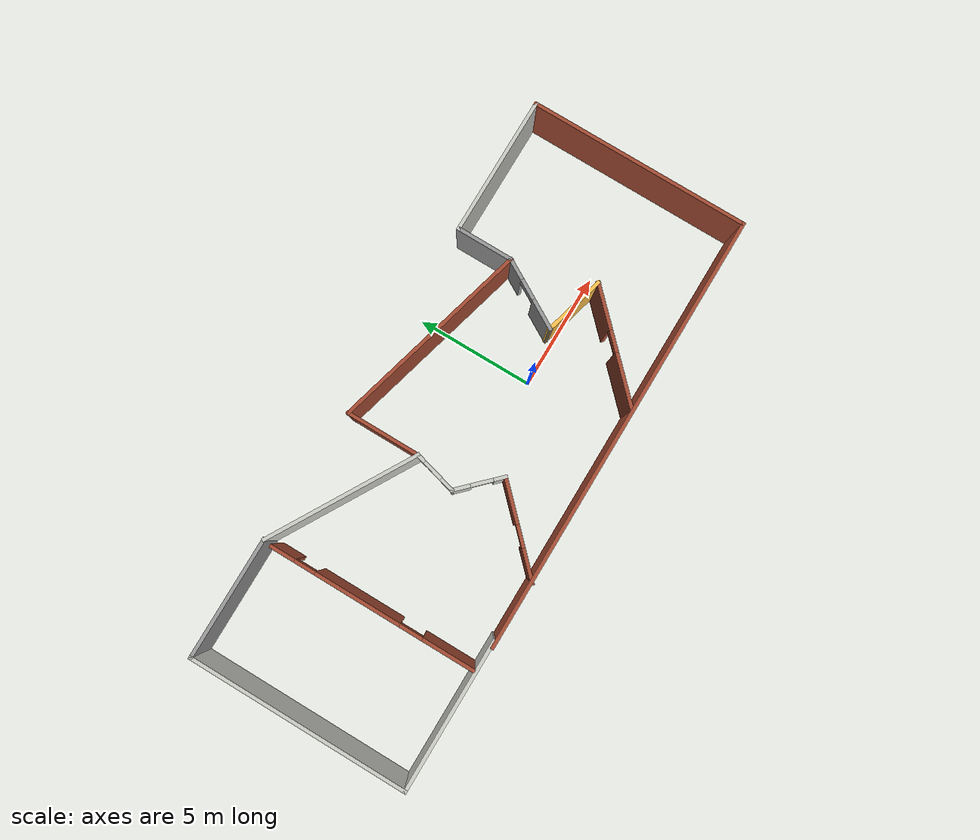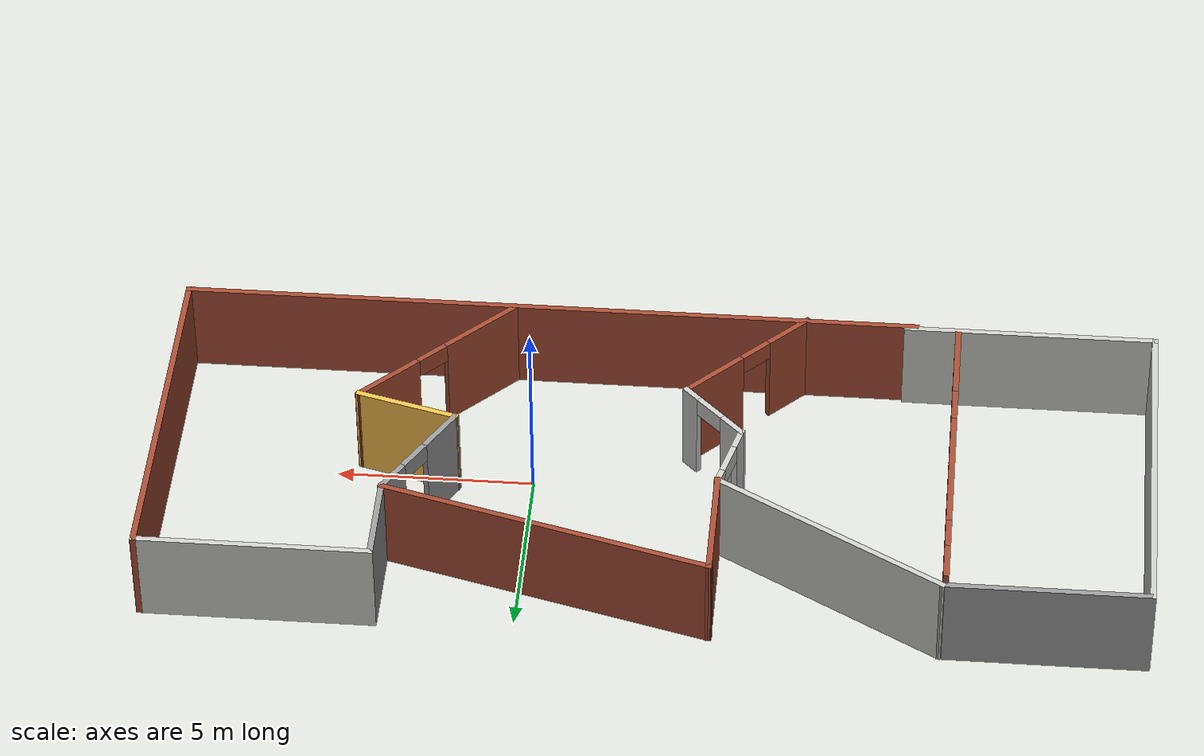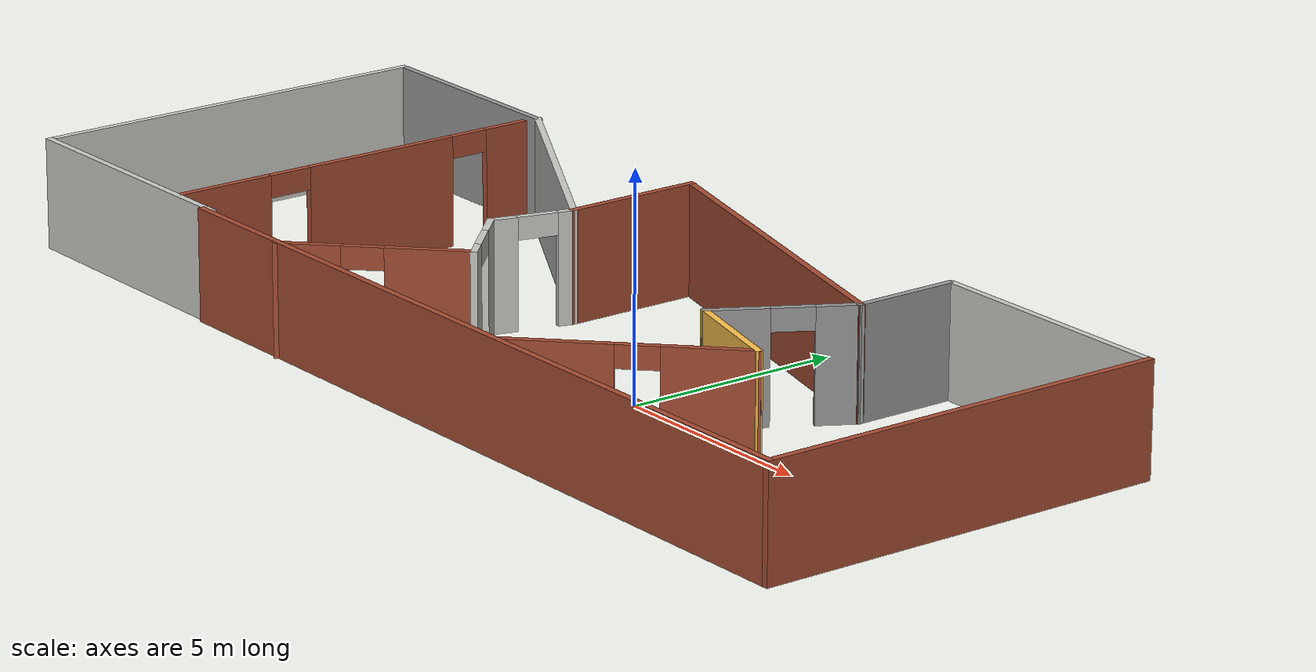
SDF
<?xml version='1.0'?>
<sdf version='1.6'>
  <model name='model'>
    <pose frame=''>-3.17932 0.659282 0 0 -0 0</pose>
    <link name='Wall_1'>
      <collision name='Wall_1_Collision'>
        <geometry>
          <box>
            <size>19 0.15 2.5</size>
          </box>
        </geometry>
        <pose frame=''>0 0 1.25 0 -0 0</pose>
      </collision>
      <visual name='Wall_1_Visual'>
        <pose frame=''>0 0 1.25 0 -0 0</pose>
        <geometry>
          <box>
            <size>19 0.15 2.5</size>
          </box>
        </geometry>
        <material>
          <script>
            <uri>file://media/materials/scripts/gazebo.material</uri>
            <name>Gazebo/Bricks</name>
          </script>
          <ambient>1 1 1 1</ambient>
        </material>
        <meta>
          <layer>0</layer>
        </meta>
      </visual>
      <pose frame=''>3.06136 -4.68852 0 0 -0 0</pose>
    </link>
    <link name='Wall_10'>
      <collision name='Wall_10_Collision'>
        <geometry>
          <box>
            <size>6.5 0.15 2.5</size>
          </box>
        </geometry>
        <pose frame=''>0 0 1.25 0 -0 0</pose>
      </collision>
      <visual name='Wall_10_Visual'>
        <pose frame=''>0 0 1.25 0 -0 0</pose>
        <geometry>
          <box>
            <size>6.5 0.15 2.5</size>
          </box>
        </geometry>
        <material>
          <script>
            <uri>file://media/materials/scripts/gazebo.material</uri>
            <name>Gazebo/CeilingTiled</name>
          </script>
          <ambient>0.996078 0.47451 0.0196078 1</ambient>
        </material>
        <meta>
          <layer>0</layer>
        </meta>
      </visual>
      <pose frame=''>-9.31137 -4.61268 0 0 -0 0</pose>
    </link>
    <link name='Wall_12'>
      <pose frame=''>-7.45424 -0.069457 0 0 0 -1.5708</pose>
      <visual name='Wall_12_Visual_0'>
        <pose frame=''>-3.956 0 1.25 0 -0 0</pose>
        <geometry>
          <box>
            <size>1.08801 0.15 2.5</size>
          </box>
        </geometry>
        <material>
          <script>
            <uri>file://media/materials/scripts/gazebo.material</uri>
            <name>Gazebo/Bricks</name>
          </script>
          <ambient>1 1 1 1</ambient>
        </material>
        <meta>
          <layer>0</layer>
        </meta>
      </visual>
      <collision name='Wall_12_Collision_0'>
        <geometry>
          <box>
            <size>1.08801 0.15 2.5</size>
          </box>
        </geometry>
        <pose frame=''>-3.956 0 1.25 0 -0 0</pose>
      </collision>
      <visual name='Wall_12_Visual_1'>
        <pose frame=''>-0.646172 0 1.25 0 -0 0</pose>
        <geometry>
          <box>
            <size>3.73163 0.15 2.5</size>
          </box>
        </geometry>
        <material>
          <script>
            <uri>file://media/materials/scripts/gazebo.material</uri>
            <name>Gazebo/Bricks</name>
          </script>
          <ambient>1 1 1 1</ambient>
        </material>
        <meta>
          <layer>0</layer>
        </meta>
      </visual>
      <collision name='Wall_12_Collision_1'>
        <geometry>
          <box>
            <size>3.73163 0.15 2.5</size>
          </box>
        </geometry>
        <pose frame=''>-0.646172 0 1.25 0 -0 0</pose>
      </collision>
      <visual name='Wall_12_Visual_2'>
        <pose frame=''>3.35982 0 1.25 0 -0 0</pose>
        <geometry>
          <box>
            <size>2.28035 0.15 2.5</size>
          </box>
        </geometry>
        <material>
          <script>
            <uri>file://media/materials/scripts/gazebo.material</uri>
            <name>Gazebo/Bricks</name>
          </script>
          <ambient>1 1 1 1</ambient>
        </material>
        <meta>
          <layer>0</layer>
        </meta>
      </visual>
      <collision name='Wall_12_Collision_2'>
        <geometry>
          <box>
            <size>2.28035 0.15 2.5</size>
          </box>
        </geometry>
        <pose frame=''>3.35982 0 1.25 0 -0 0</pose>
      </collision>
      <visual name='Wall_12_Visual_3'>
        <pose frame=''>-2.96199 0 2.25 0 -0 0</pose>
        <geometry>
          <box>
            <size>0.9 0.15 0.5</size>
          </box>
        </geometry>
        <material>
          <script>
            <uri>file://media/materials/scripts/gazebo.material</uri>
            <name>Gazebo/Bricks</name>
          </script>
          <ambient>1 1 1 1</ambient>
        </material>
        <meta>
          <layer>0</layer>
        </meta>
      </visual>
      <collision name='Wall_12_Collision_3'>
        <geometry>
          <box>
            <size>0.9 0.15 0.5</size>
          </box>
        </geometry>
        <pose frame=''>-2.96199 0 2.25 0 -0 0</pose>
      </collision>
      <visual name='Wall_12_Visual_4'>
        <pose frame=''>1.71965 0 2.25 0 -0 0</pose>
        <geometry>
          <box>
            <size>1 0.15 0.5</size>
          </box>
        </geometry>
        <material>
          <script>
            <uri>file://media/materials/scripts/gazebo.material</uri>
            <name>Gazebo/Bricks</name>
          </script>
          <ambient>1 1 1 1</ambient>
        </material>
        <meta>
          <layer>0</layer>
        </meta>
      </visual>
      <collision name='Wall_12_Collision_4'>
        <geometry>
          <box>
            <size>1 0.15 0.5</size>
          </box>
        </geometry>
        <pose frame=''>1.71965 0 2.25 0 -0 0</pose>
      </collision>
    </link>
    <link name='Wall_14'>
      <pose frame=''>-1.91 0.543838 0 0 0 -1.8326</pose>
      <visual name='Wall_14_Visual_0'>
        <pose frame=''>-0.778717 0 1.25 0 -0 0</pose>
        <geometry>
          <box>
            <size>0.442566 0.15 2.5</size>
          </box>
        </geometry>
        <material>
          <script>
            <uri>file://media/materials/scripts/gazebo.material</uri>
            <name>Gazebo/CeilingTiled</name>
          </script>
          <ambient>1 0.764706 0.305882 1</ambient>
        </material>
        <meta>
          <layer>0</layer>
        </meta>
      </visual>
      <collision name='Wall_14_Collision_0'>
        <geometry>
          <box>
            <size>0.442566 0.15 2.5</size>
          </box>
        </geometry>
        <pose frame=''>-0.778717 0 1.25 0 -0 0</pose>
      </collision>
      <visual name='Wall_14_Visual_1'>
        <pose frame=''>0.671283 0 1.25 0 -0 0</pose>
        <geometry>
          <box>
            <size>0.657434 0.15 2.5</size>
          </box>
        </geometry>
        <material>
          <script>
            <uri>file://media/materials/scripts/gazebo.material</uri>
            <name>Gazebo/CeilingTiled</name>
          </script>
          <ambient>1 0.764706 0.305882 1</ambient>
        </material>
        <meta>
          <layer>0</layer>
        </meta>
      </visual>
      <collision name='Wall_14_Collision_1'>
        <geometry>
          <box>
            <size>0.657434 0.15 2.5</size>
          </box>
        </geometry>
        <pose frame=''>0.671283 0 1.25 0 -0 0</pose>
      </collision>
      <visual name='Wall_14_Visual_2'>
        <pose frame=''>-0.107434 0 2.25 0 -0 0</pose>
        <geometry>
          <box>
            <size>0.9 0.15 0.5</size>
          </box>
        </geometry>
        <material>
          <script>
            <uri>file://media/materials/scripts/gazebo.material</uri>
            <name>Gazebo/CeilingTiled</name>
          </script>
          <ambient>1 0.764706 0.305882 1</ambient>
        </material>
        <meta>
          <layer>0</layer>
        </meta>
      </visual>
      <collision name='Wall_14_Collision_2'>
        <geometry>
          <box>
            <size>0.9 0.15 0.5</size>
          </box>
        </geometry>
        <pose frame=''>-0.107434 0 2.25 0 -0 0</pose>
      </collision>
    </link>
    <link name='Wall_15'>
      <pose frame=''>-1.40695 -1.09211 0 0 0 -0.785398</pose>
      <visual name='Wall_15_Visual_0'>
        <pose frame=''>-0.72296 0 1.25 0 -0 0</pose>
        <geometry>
          <box>
            <size>0.804079 0.15 2.5</size>
          </box>
        </geometry>
        <material>
          <script>
            <uri>file://media/materials/scripts/gazebo.material</uri>
            <name>Gazebo/CeilingTiled</name>
          </script>
          <ambient>1 0.764706 0.305882 1</ambient>
        </material>
        <meta>
          <layer>0</layer>
        </meta>
      </visual>
      <collision name='Wall_15_Collision_0'>
        <geometry>
          <box>
            <size>0.804079 0.15 2.5</size>
          </box>
        </geometry>
        <pose frame=''>-0.72296 0 1.25 0 -0 0</pose>
      </collision>
      <visual name='Wall_15_Visual_1'>
        <pose frame=''>0.85204 0 1.25 0 -0 0</pose>
        <geometry>
          <box>
            <size>0.545921 0.15 2.5</size>
          </box>
        </geometry>
        <material>
          <script>
            <uri>file://media/materials/scripts/gazebo.material</uri>
            <name>Gazebo/CeilingTiled</name>
          </script>
          <ambient>1 0.764706 0.305882 1</ambient>
        </material>
        <meta>
          <layer>0</layer>
        </meta>
      </visual>
      <collision name='Wall_15_Collision_1'>
        <geometry>
          <box>
            <size>0.545921 0.15 2.5</size>
          </box>
        </geometry>
        <pose frame=''>0.85204 0 1.25 0 -0 0</pose>
      </collision>
      <visual name='Wall_15_Visual_2'>
        <pose frame=''>0.129079 0 2.25 0 -0 0</pose>
        <geometry>
          <box>
            <size>0.9 0.15 0.5</size>
          </box>
        </geometry>
        <material>
          <script>
            <uri>file://media/materials/scripts/gazebo.material</uri>
            <name>Gazebo/CeilingTiled</name>
          </script>
          <ambient>1 0.764706 0.305882 1</ambient>
        </material>
        <meta>
          <layer>0</layer>
        </meta>
      </visual>
      <collision name='Wall_15_Collision_2'>
        <geometry>
          <box>
            <size>0.9 0.15 0.5</size>
          </box>
        </geometry>
        <pose frame=''>0.129079 0 2.25 0 -0 0</pose>
      </collision>
    </link>
    <link name='Wall_16'>
      <pose frame=''>-2.11406 -3.28414 0 0 0 -2.35619</pose>
      <visual name='Wall_16_Visual_0'>
        <pose frame=''>-1.16003 0 1.25 0 -0 0</pose>
        <geometry>
          <box>
            <size>1.92993 0.15 2.5</size>
          </box>
        </geometry>
        <material>
          <script>
            <uri>file://media/materials/scripts/gazebo.material</uri>
            <name>Gazebo/Bricks</name>
          </script>
          <ambient>1 1 1 1</ambient>
        </material>
        <meta>
          <layer>0</layer>
        </meta>
      </visual>
      <collision name='Wall_16_Collision_0'>
        <geometry>
          <box>
            <size>1.92993 0.15 2.5</size>
          </box>
        </geometry>
        <pose frame=''>-1.16003 0 1.25 0 -0 0</pose>
      </collision>
      <visual name='Wall_16_Visual_1'>
        <pose frame=''>1.41497 0 1.25 0 -0 0</pose>
        <geometry>
          <box>
            <size>1.42007 0.15 2.5</size>
          </box>
        </geometry>
        <material>
          <script>
            <uri>file://media/materials/scripts/gazebo.material</uri>
            <name>Gazebo/Bricks</name>
          </script>
          <ambient>1 1 1 1</ambient>
        </material>
        <meta>
          <layer>0</layer>
        </meta>
      </visual>
      <collision name='Wall_16_Collision_1'>
        <geometry>
          <box>
            <size>1.42007 0.15 2.5</size>
          </box>
        </geometry>
        <pose frame=''>1.41497 0 1.25 0 -0 0</pose>
      </collision>
      <visual name='Wall_16_Visual_2'>
        <pose frame=''>0.25493 0 2.25 0 -0 0</pose>
        <geometry>
          <box>
            <size>0.9 0.15 0.5</size>
          </box>
        </geometry>
        <material>
          <script>
            <uri>file://media/materials/scripts/gazebo.material</uri>
            <name>Gazebo/Bricks</name>
          </script>
          <ambient>1 1 1 1</ambient>
        </material>
        <meta>
          <layer>0</layer>
        </meta>
      </visual>
      <collision name='Wall_16_Collision_2'>
        <geometry>
          <box>
            <size>0.9 0.15 0.5</size>
          </box>
        </geometry>
        <pose frame=''>0.25493 0 2.25 0 -0 0</pose>
      </collision>
    </link>
    <link name='Wall_18'>
      <pose frame=''>5.86137 0.969136 0 0 0 -2.0944</pose>
      <visual name='Wall_18_Visual_0'>
        <pose frame=''>-1.13596 0 1.25 0 -0 0</pose>
        <geometry>
          <box>
            <size>0.978077 0.15 2.5</size>
          </box>
        </geometry>
        <material>
          <script>
            <uri>file://media/materials/scripts/gazebo.material</uri>
            <name>Gazebo/Grey</name>
          </script>
          <ambient>1 1 1 1</ambient>
        </material>
        <meta>
          <layer>0</layer>
        </meta>
      </visual>
      <collision name='Wall_18_Collision_0'>
        <geometry>
          <box>
            <size>0.978077 0.15 2.5</size>
          </box>
        </geometry>
        <pose frame=''>-1.13596 0 1.25 0 -0 0</pose>
      </collision>
      <visual name='Wall_18_Visual_1'>
        <pose frame=''>0.939039 0 1.25 0 -0 0</pose>
        <geometry>
          <box>
            <size>1.37192 0.15 2.5</size>
          </box>
        </geometry>
        <material>
          <script>
            <uri>file://media/materials/scripts/gazebo.material</uri>
            <name>Gazebo/Grey</name>
          </script>
          <ambient>1 1 1 1</ambient>
        </material>
        <meta>
          <layer>0</layer>
        </meta>
      </visual>
      <collision name='Wall_18_Collision_1'>
        <geometry>
          <box>
            <size>1.37192 0.15 2.5</size>
          </box>
        </geometry>
        <pose frame=''>0.939039 0 1.25 0 -0 0</pose>
      </collision>
      <visual name='Wall_18_Visual_2'>
        <pose frame=''>-0.196923 0 2.25 0 -0 0</pose>
        <geometry>
          <box>
            <size>0.9 0.15 0.5</size>
          </box>
        </geometry>
        <material>
          <script>
            <uri>file://media/materials/scripts/gazebo.material</uri>
            <name>Gazebo/Grey</name>
          </script>
          <ambient>1 1 1 1</ambient>
        </material>
        <meta>
          <layer>0</layer>
        </meta>
      </visual>
      <collision name='Wall_18_Collision_2'>
        <geometry>
          <box>
            <size>0.9 0.15 0.5</size>
          </box>
        </geometry>
        <pose frame=''>-0.196923 0 2.25 0 -0 0</pose>
      </collision>
    </link>
    <link name='Wall_19'>
      <collision name='Wall_19_Collision'>
        <geometry>
          <box>
            <size>2.75 0.15 2.5</size>
          </box>
        </geometry>
        <pose frame=''>0 0 1.25 0 -0 0</pose>
      </collision>
      <visual name='Wall_19_Visual'>
        <pose frame=''>0 0 1.25 0 -0 0</pose>
        <geometry>
          <box>
            <size>2.75 0.15 2.5</size>
          </box>
        </geometry>
        <material>
          <script>
            <uri>file://media/materials/scripts/gazebo.material</uri>
            <name>Gazebo/Grey</name>
          </script>
          <ambient>1 0.764706 0.305882 1</ambient>
        </material>
        <meta>
          <layer>0</layer>
        </meta>
      </visual>
      <pose frame=''>6.34207 -0.709668 0 0 0 -0.261799</pose>
    </link>
    <link name='Wall_2'>
      <collision name='Wall_2_Collision'>
        <geometry>
          <box>
            <size>9.5 0.15 2.5</size>
          </box>
        </geometry>
        <pose frame=''>0 0 1.25 0 -0 0</pose>
      </collision>
      <visual name='Wall_2_Visual'>
        <pose frame=''>0 0 1.25 0 -0 0</pose>
        <geometry>
          <box>
            <size>9.5 0.15 2.5</size>
          </box>
        </geometry>
        <material>
          <script>
            <uri>file://media/materials/scripts/gazebo.material</uri>
            <name>Gazebo/Bricks</name>
          </script>
          <ambient>1 1 1 1</ambient>
        </material>
        <meta>
          <layer>0</layer>
        </meta>
      </visual>
      <pose frame=''>12.4864 -0.013524 0 0 -0 1.5708</pose>
    </link>
    <link name='Wall_20'>
      <pose frame=''>5.79465 -2.84925 0 0 0 -2.35619</pose>
      <visual name='Wall_20_Visual_0'>
        <pose frame=''>-1.63888 0 1.25 0 -0 0</pose>
        <geometry>
          <box>
            <size>1.97224 0.15 2.5</size>
          </box>
        </geometry>
        <material>
          <script>
            <uri>file://media/materials/scripts/gazebo.material</uri>
            <name>Gazebo/Bricks</name>
          </script>
          <ambient>1 1 1 1</ambient>
        </material>
        <meta>
          <layer>0</layer>
        </meta>
      </visual>
      <collision name='Wall_20_Collision_0'>
        <geometry>
          <box>
            <size>1.97224 0.15 2.5</size>
          </box>
        </geometry>
        <pose frame=''>-1.63888 0 1.25 0 -0 0</pose>
      </collision>
      <visual name='Wall_20_Visual_1'>
        <pose frame=''>1.43612 0 1.25 0 -0 0</pose>
        <geometry>
          <box>
            <size>2.37776 0.15 2.5</size>
          </box>
        </geometry>
        <material>
          <script>
            <uri>file://media/materials/scripts/gazebo.material</uri>
            <name>Gazebo/Bricks</name>
          </script>
          <ambient>1 1 1 1</ambient>
        </material>
        <meta>
          <layer>0</layer>
        </meta>
      </visual>
      <collision name='Wall_20_Collision_1'>
        <geometry>
          <box>
            <size>2.37776 0.15 2.5</size>
          </box>
        </geometry>
        <pose frame=''>1.43612 0 1.25 0 -0 0</pose>
      </collision>
      <visual name='Wall_20_Visual_2'>
        <pose frame=''>-0.202764 0 2.25 0 -0 0</pose>
        <geometry>
          <box>
            <size>0.9 0.15 0.5</size>
          </box>
        </geometry>
        <material>
          <script>
            <uri>file://media/materials/scripts/gazebo.material</uri>
            <name>Gazebo/Bricks</name>
          </script>
          <ambient>1 1 1 1</ambient>
        </material>
        <meta>
          <layer>0</layer>
        </meta>
      </visual>
      <collision name='Wall_20_Collision_2'>
        <geometry>
          <box>
            <size>0.9 0.15 0.5</size>
          </box>
        </geometry>
        <pose frame=''>-0.202764 0 2.25 0 -0 0</pose>
      </collision>
    </link>
    <link name='Wall_3'>
      <collision name='Wall_3_Collision'>
        <geometry>
          <box>
            <size>6 0.15 2.5</size>
          </box>
        </geometry>
        <pose frame=''>0 0 1.25 0 -0 0</pose>
      </collision>
      <visual name='Wall_3_Visual'>
        <pose frame=''>0 0 1.25 0 -0 0</pose>
        <geometry>
          <box>
            <size>6 0.15 2.5</size>
          </box>
        </geometry>
        <material>
          <script>
            <uri>file://media/materials/scripts/gazebo.material</uri>
            <name>Gazebo/CeilingTiled</name>
          </script>
          <ambient>0.996078 0.47451 0.0196078 1</ambient>
        </material>
        <meta>
          <layer>0</layer>
        </meta>
      </visual>
      <pose frame=''>9.56137 4.66148 0 0 -0 3.14159</pose>
    </link>
    <link name='Wall_4'>
      <collision name='Wall_4_Collision'>
        <geometry>
          <box>
            <size>2.5 0.15 2.5</size>
          </box>
        </geometry>
        <pose frame=''>0 0 1.25 0 -0 0</pose>
      </collision>
      <visual name='Wall_4_Visual'>
        <pose frame=''>0 0 1.25 0 -0 0</pose>
        <geometry>
          <box>
            <size>2.5 0.15 2.5</size>
          </box>
        </geometry>
        <material>
          <script>
            <uri>file://media/materials/scripts/gazebo.material</uri>
            <name>Gazebo/Grey</name>
          </script>
          <ambient>1 1 1 1</ambient>
        </material>
        <meta>
          <layer>0</layer>
        </meta>
      </visual>
      <pose frame=''>6.63636 3.48647 0 0 0 -1.5708</pose>
    </link>
    <link name='Wall_5'>
      <collision name='Wall_5_Collision'>
        <geometry>
          <box>
            <size>8.75 0.15 2.5</size>
          </box>
        </geometry>
        <pose frame=''>0 0 1.25 0 -0 0</pose>
      </collision>
      <visual name='Wall_5_Visual'>
        <pose frame=''>0 0 1.25 0 -0 0</pose>
        <geometry>
          <box>
            <size>8.75 0.15 2.5</size>
          </box>
        </geometry>
        <material>
          <script>
            <uri>file://media/materials/scripts/gazebo.material</uri>
            <name>Gazebo/Bricks</name>
          </script>
          <ambient>1 1 1 1</ambient>
        </material>
        <meta>
          <layer>0</layer>
        </meta>
      </visual>
      <pose frame=''>2.48288 3.4244 0 0 -0 2.87979</pose>
    </link>
    <link name='Wall_6'>
      <collision name='Wall_6_Collision'>
        <geometry>
          <box>
            <size>3.25 0.15 2.5</size>
          </box>
        </geometry>
        <pose frame=''>0 0 1.25 0 -0 0</pose>
      </collision>
      <visual name='Wall_6_Visual'>
        <pose frame=''>0 0 1.25 0 -0 0</pose>
        <geometry>
          <box>
            <size>3.25 0.15 2.5</size>
          </box>
        </geometry>
        <material>
          <script>
            <uri>file://media/materials/scripts/gazebo.material</uri>
            <name>Gazebo/Bricks</name>
          </script>
          <ambient>1 1 1 1</ambient>
        </material>
        <meta>
          <layer>0</layer>
        </meta>
      </visual>
      <pose frame=''>-1.6706 2.98732 0 0 0 -1.5708</pose>
    </link>
    <link name='Wall_7'>
      <collision name='Wall_7_Collision'>
        <geometry>
          <box>
            <size>6.75 0.15 2.5</size>
          </box>
        </geometry>
        <pose frame=''>0 0 1.25 0 -0 0</pose>
      </collision>
      <visual name='Wall_7_Visual'>
        <pose frame=''>0 0 1.25 0 -0 0</pose>
        <geometry>
          <box>
            <size>6.75 0.15 2.5</size>
          </box>
        </geometry>
        <material>
          <script>
            <uri>file://media/materials/scripts/gazebo.material</uri>
            <name>Gazebo/CeilingTiled</name>
          </script>
          <ambient>1 0.764706 0.305882 1</ambient>
        </material>
        <meta>
          <layer>0</layer>
        </meta>
      </visual>
      <pose frame=''>-4.52848 3.08732 0 0 -0 2.61799</pose>
    </link>
    <link name='Wall_8'>
      <collision name='Wall_8_Collision'>
        <geometry>
          <box>
            <size>5.25 0.15 2.5</size>
          </box>
        </geometry>
        <pose frame=''>0 0 1.25 0 -0 0</pose>
      </collision>
      <visual name='Wall_8_Visual'>
        <pose frame=''>0 0 1.25 0 -0 0</pose>
        <geometry>
          <box>
            <size>5.25 0.15 2.5</size>
          </box>
        </geometry>
        <material>
          <script>
            <uri>file://media/materials/scripts/gazebo.material</uri>
            <name>Gazebo/Grey</name>
          </script>
          <ambient>1 1 1 1</ambient>
        </material>
        <meta>
          <layer>0</layer>
        </meta>
      </visual>
      <pose frame=''>-9.93637 4.73732 0 0 -0 3.14159</pose>
    </link>
    <link name='Wall_9'>
      <collision name='Wall_9_Collision'>
        <geometry>
          <box>
            <size>9.5 0.15 2.5</size>
          </box>
        </geometry>
        <pose frame=''>0 0 1.25 0 -0 0</pose>
      </collision>
      <visual name='Wall_9_Visual'>
        <pose frame=''>0 0 1.25 0 -0 0</pose>
        <geometry>
          <box>
            <size>9.5 0.15 2.5</size>
          </box>
        </geometry>
        <material>
          <script>
            <uri>file://media/materials/scripts/gazebo.material</uri>
            <name>Gazebo/CeilingTiled</name>
          </script>
          <ambient>1 1 1 1</ambient>
        </material>
        <meta>
          <layer>0</layer>
        </meta>
      </visual>
      <pose frame=''>-12.4864 0.062319 0 0 0 -1.5708</pose>
    </link>
    <static>1</static>
  </model>
</sdf>
